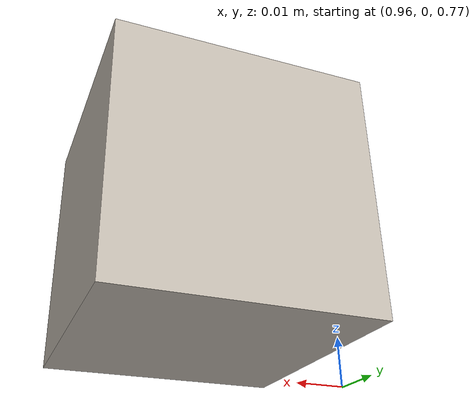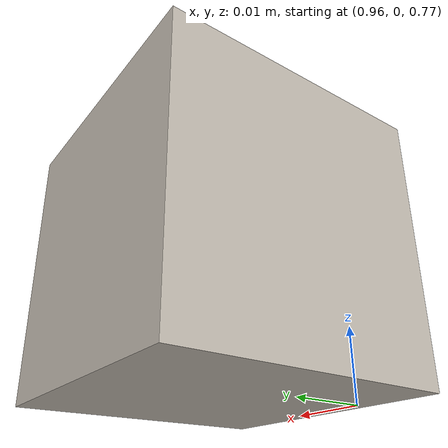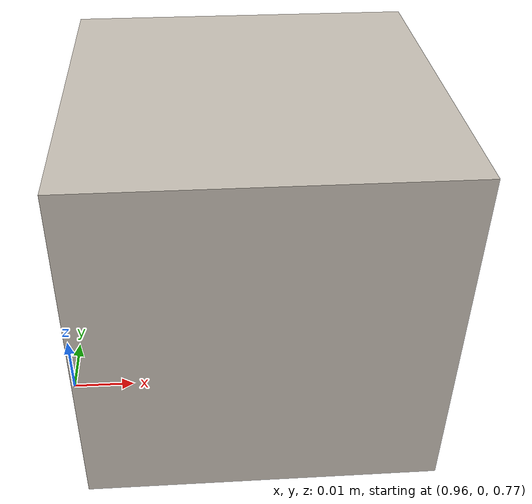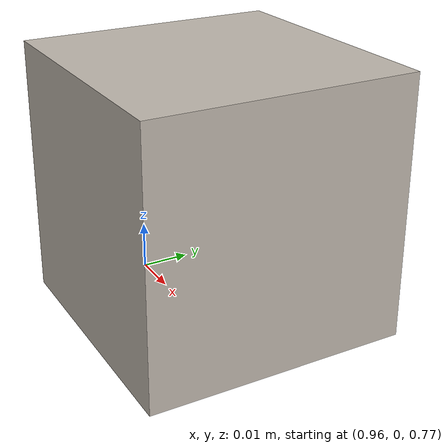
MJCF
<mujoco>
    <asset>
        <texture name="texture_block" file="./textures/block.png" gridsize="3 4" gridlayout=".U..LFRB.D.."></texture>
		<material name="block_mat" texture="texture_block" specular="0" shininess="0.5" reflectance="0"></material>
	</asset>

    <worldbody>
        <body name="object0" pos="0.99 0.0 0.8">
            <joint name="object0:joint" type="free" damping="0.1" limited="false"></joint>
            <geom size="0.025 0.025 0.025" type="box" condim="3" name="object0" material="block_mat" mass="20"></geom>
            <site name="object0" pos="0 0 0" size="0.02 0.02 0.02" rgba="0.9 0.2 0 1" type="sphere"></site>
        </body>
    </worldbody>
</mujoco>
